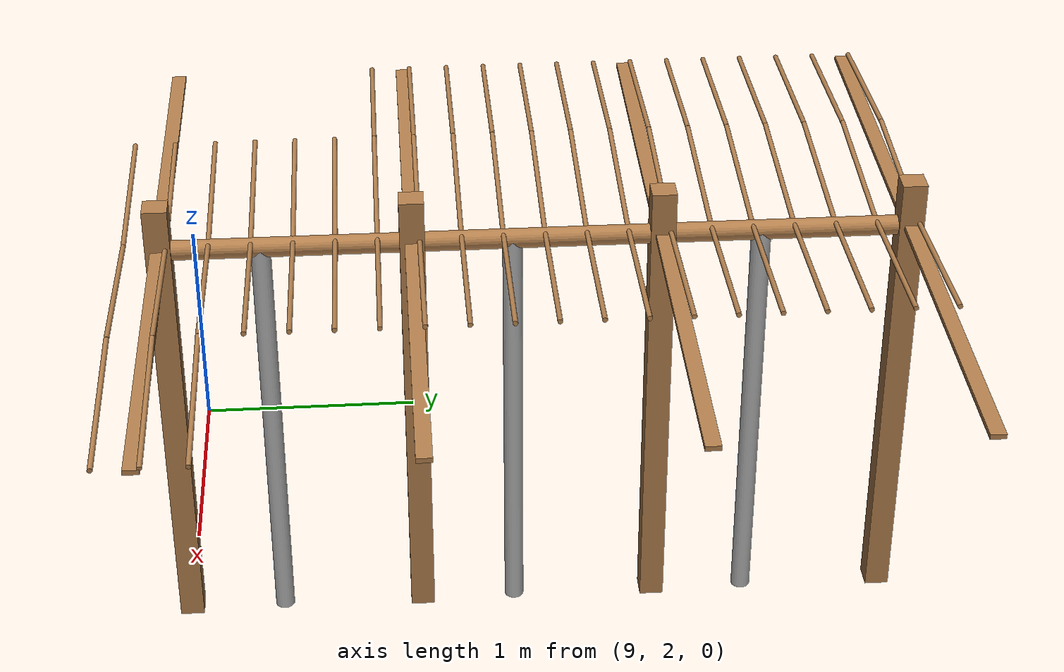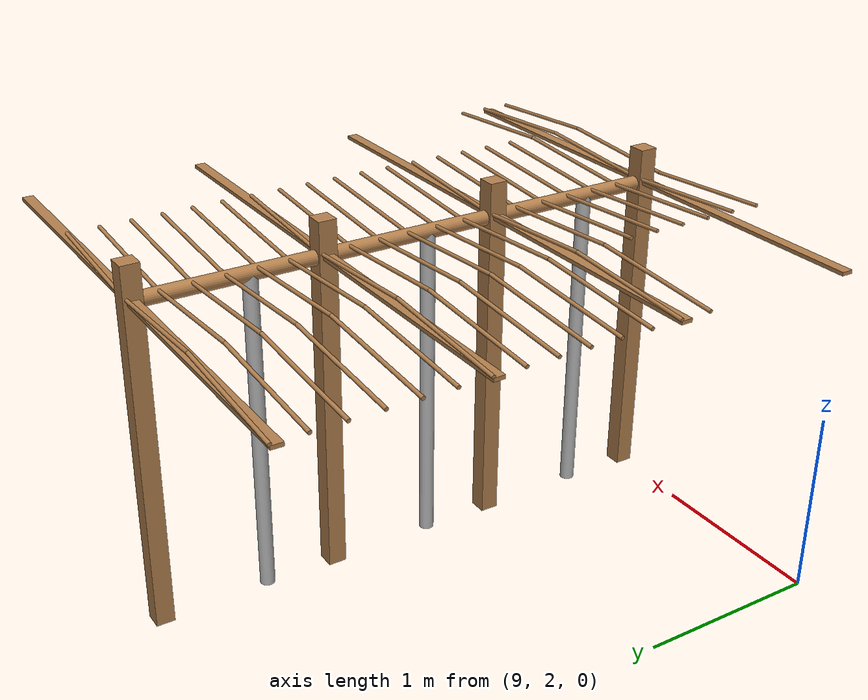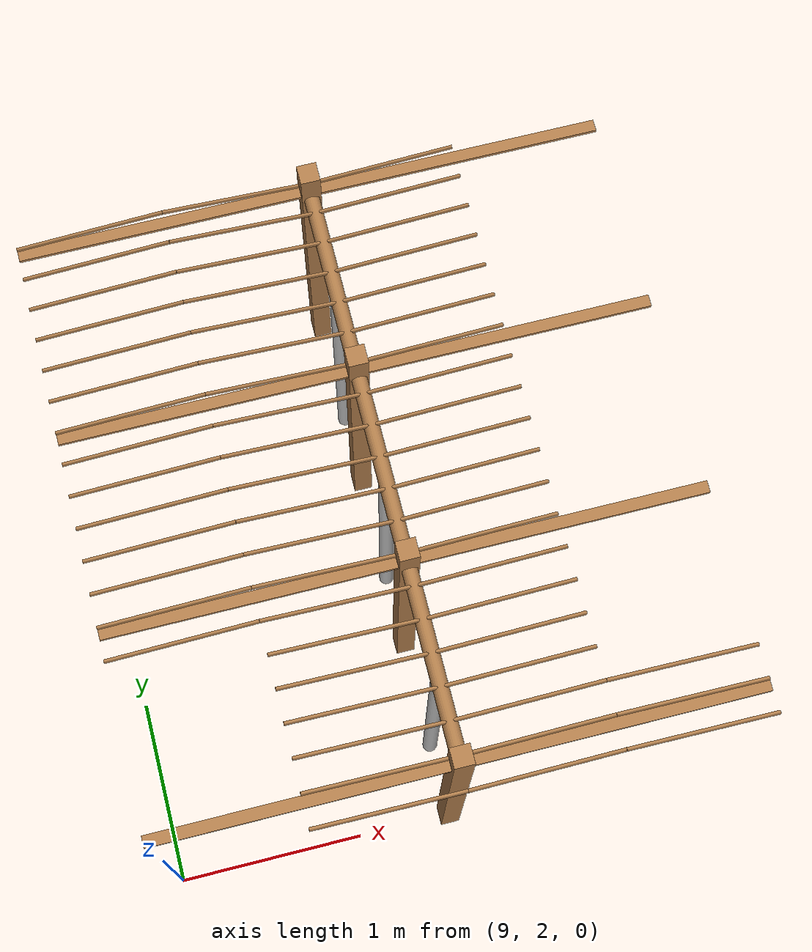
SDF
<sdf version="1.4">
 <model name="pergola">
  <include><name>post_79</name><pose>10.5 2.0 0 0 0 0</pose><uri>model://post</uri></include>
  <include><name>post_80</name><pose>10.5 3.0 0 0 0 0</pose><uri>model://post</uri></include>
  <include><name>post_81</name><pose>10.5 4.0 0 0 0 0</pose><uri>model://post</uri></include>
  <include><name>post_82</name><pose>10.5 5.0 0 0 0 0</pose><uri>model://post</uri></include>
  <link name="beam_68">
   <pose>9.75 2.0 1.81 0 0 0</pose>
   <collision name="collision"><geometry><box><size>1.5 0.06 0.02</size></box></geometry></collision>
   <visual name="visual">
    <geometry><box><size>1.5 0.06 0.02</size></box></geometry>
    <material><script><name>Gazebo/Wood</name></script></material>
   </visual>
   <inertial>
    <mass>5</mass>
    <inertia>
     <ixx>0.0016666666666666668</ixx>
     <ixy>0.0</ixy>
     <ixz>0.0</ixz>
     <iyy>0.9390000000000001</iyy>
     <iyz>0.0</iyz>
     <izz>0.9376666666666665</izz>
    </inertia>
   </inertial>
  </link>
  <link name="beam_69">
   <pose>9.75 3.0 1.81 0 0 0</pose>
   <collision name="collision"><geometry><box><size>1.5 0.06 0.02</size></box></geometry></collision>
   <visual name="visual">
    <geometry><box><size>1.5 0.06 0.02</size></box></geometry>
    <material><script><name>Gazebo/Wood</name></script></material>
   </visual>
   <inertial>
    <mass>5</mass>
    <inertia>
     <ixx>0.0016666666666666668</ixx>
     <ixy>0.0</ixy>
     <ixz>0.0</ixz>
     <iyy>0.9390000000000001</iyy>
     <iyz>0.0</iyz>
     <izz>0.9376666666666665</izz>
    </inertia>
   </inertial>
  </link>
  <link name="beam_70">
   <pose>9.75 4.0 1.81 0 0 0</pose>
   <collision name="collision"><geometry><box><size>1.5 0.06 0.02</size></box></geometry></collision>
   <visual name="visual">
    <geometry><box><size>1.5 0.06 0.02</size></box></geometry>
    <material><script><name>Gazebo/Wood</name></script></material>
   </visual>
   <inertial>
    <mass>5</mass>
    <inertia>
     <ixx>0.0016666666666666668</ixx>
     <ixy>0.0</ixy>
     <ixz>0.0</ixz>
     <iyy>0.9390000000000001</iyy>
     <iyz>0.0</iyz>
     <izz>0.9376666666666665</izz>
    </inertia>
   </inertial>
  </link>
  <link name="beam_71">
   <pose>9.75 5.0 1.81 0 0 0</pose>
   <collision name="collision"><geometry><box><size>1.5 0.06 0.02</size></box></geometry></collision>
   <visual name="visual">
    <geometry><box><size>1.5 0.06 0.02</size></box></geometry>
    <material><script><name>Gazebo/Wood</name></script></material>
   </visual>
   <inertial>
    <mass>5</mass>
    <inertia>
     <ixx>0.0016666666666666668</ixx>
     <ixy>0.0</ixy>
     <ixz>0.0</ixz>
     <iyy>0.9390000000000001</iyy>
     <iyz>0.0</iyz>
     <izz>0.9376666666666665</izz>
    </inertia>
   </inertial>
  </link>
  <link name="beam_79">
   <pose>11.25 2.0 1.81 0 0 0</pose>
   <collision name="collision"><geometry><box><size>1.5 0.06 0.02</size></box></geometry></collision>
   <visual name="visual">
    <geometry><box><size>1.5 0.06 0.02</size></box></geometry>
    <material><script><name>Gazebo/Wood</name></script></material>
   </visual>
   <inertial>
    <mass>5</mass>
    <inertia>
     <ixx>0.0016666666666666668</ixx>
     <ixy>0.0</ixy>
     <ixz>0.0</ixz>
     <iyy>0.9390000000000001</iyy>
     <iyz>0.0</iyz>
     <izz>0.9376666666666665</izz>
    </inertia>
   </inertial>
  </link>
  <link name="beam_80">
   <pose>11.25 3.0 1.81 0 0 0</pose>
   <collision name="collision"><geometry><box><size>1.5 0.06 0.02</size></box></geometry></collision>
   <visual name="visual">
    <geometry><box><size>1.5 0.06 0.02</size></box></geometry>
    <material><script><name>Gazebo/Wood</name></script></material>
   </visual>
   <inertial>
    <mass>5</mass>
    <inertia>
     <ixx>0.0016666666666666668</ixx>
     <ixy>0.0</ixy>
     <ixz>0.0</ixz>
     <iyy>0.9390000000000001</iyy>
     <iyz>0.0</iyz>
     <izz>0.9376666666666665</izz>
    </inertia>
   </inertial>
  </link>
  <link name="beam_81">
   <pose>11.25 4.0 1.81 0 0 0</pose>
   <collision name="collision"><geometry><box><size>1.5 0.06 0.02</size></box></geometry></collision>
   <visual name="visual">
    <geometry><box><size>1.5 0.06 0.02</size></box></geometry>
    <material><script><name>Gazebo/Wood</name></script></material>
   </visual>
   <inertial>
    <mass>5</mass>
    <inertia>
     <ixx>0.0016666666666666668</ixx>
     <ixy>0.0</ixy>
     <ixz>0.0</ixz>
     <iyy>0.9390000000000001</iyy>
     <iyz>0.0</iyz>
     <izz>0.9376666666666665</izz>
    </inertia>
   </inertial>
  </link>
  <link name="beam_82">
   <pose>11.25 5.0 1.81 0 0 0</pose>
   <collision name="collision"><geometry><box><size>1.5 0.06 0.02</size></box></geometry></collision>
   <visual name="visual">
    <geometry><box><size>1.5 0.06 0.02</size></box></geometry>
    <material><script><name>Gazebo/Wood</name></script></material>
   </visual>
   <inertial>
    <mass>5</mass>
    <inertia>
     <ixx>0.0016666666666666668</ixx>
     <ixy>0.0</ixy>
     <ixz>0.0</ixz>
     <iyy>0.9390000000000001</iyy>
     <iyz>0.0</iyz>
     <izz>0.9376666666666665</izz>
    </inertia>
   </inertial>
  </link>
  <include><name>tree_72</name><pose>10.5 2.4 0 0 0 0</pose><uri>model://tree_trunk</uri></include>
  <include><name>tree_73</name><pose>10.5 3.4 0 0 0 0</pose><uri>model://tree_trunk</uri></include>
  <include><name>tree_74</name><pose>10.5 4.4 0 0 0 0</pose><uri>model://tree_trunk</uri></include>
  <link name="baseBranch_72">
   <pose>10.5 2.5 1.8 1.5707963267948966 0 0</pose>
   <collision name="collision">
    <geometry><cylinder><radius>0.04</radius><length>0.94</length></cylinder></geometry>
   </collision>
   <visual name="visual">
    <geometry><cylinder><radius>0.04</radius><length>0.94</length></cylinder></geometry>
    <material><script><name>Gazebo/WoodFloor</name></script></material>
   </visual>
   <inertial>
    <mass>10</mass>
    <inertia>
     <ixx>0.7403333333333334</ixx>
     <ixy>0.0</ixy>
     <ixz>0.0</ixz>
     <iyy>0.7403333333333334</iyy>
     <iyz>0.0</iyz>
     <izz>0.008</izz>
    </inertia>
   </inertial>
  </link>
  <link name="baseBranch_73">
   <pose>10.5 3.5 1.8 1.5707963267948966 0 0</pose>
   <collision name="collision">
    <geometry><cylinder><radius>0.04</radius><length>0.94</length></cylinder></geometry>
   </collision>
   <visual name="visual">
    <geometry><cylinder><radius>0.04</radius><length>0.94</length></cylinder></geometry>
    <material><script><name>Gazebo/WoodFloor</name></script></material>
   </visual>
   <inertial>
    <mass>10</mass>
    <inertia>
     <ixx>0.7403333333333334</ixx>
     <ixy>0.0</ixy>
     <ixz>0.0</ixz>
     <iyy>0.7403333333333334</iyy>
     <iyz>0.0</iyz>
     <izz>0.008</izz>
    </inertia>
   </inertial>
  </link>
  <link name="baseBranch_74">
   <pose>10.5 4.5 1.8 1.5707963267948966 0 0</pose>
   <collision name="collision">
    <geometry><cylinder><radius>0.04</radius><length>0.94</length></cylinder></geometry>
   </collision>
   <visual name="visual">
    <geometry><cylinder><radius>0.04</radius><length>0.94</length></cylinder></geometry>
    <material><script><name>Gazebo/WoodFloor</name></script></material>
   </visual>
   <inertial>
    <mass>10</mass>
    <inertia>
     <ixx>0.7403333333333334</ixx>
     <ixy>0.0</ixy>
     <ixz>0.0</ixz>
     <iyy>0.7403333333333334</iyy>
     <iyz>0.0</iyz>
     <izz>0.008</izz>
    </inertia>
   </inertial>
  </link>
  <link name="vine_743">
   <pose>10.125 1.8633333333333333 1.85 0 -1.5042281630190728 0</pose>
   <collision name="collision">
    <geometry><cylinder><radius>0.01</radius><length>0.7516648189186453</length></cylinder></geometry>
   </collision>
   <visual name="visual">
    <geometry><cylinder><radius>0.01</radius><length>0.7516648189186453</length></cylinder></geometry>
    <material><script><name>Gazebo/WoodFloor</name></script></material>
   </visual>
   <inertial>
    <mass>5</mass>
    <inertia>
     <ixx>0.23554166666666657</ixx>
     <ixy>0.0</ixy>
     <ixz>0.0</ixz>
     <iyy>0.23554166666666657</iyy>
     <iyz>0.0</iyz>
     <izz>0.00025</izz>
    </inertia>
   </inertial>
  </link>
  <link name="vine_745">
   <pose>10.125 2.03 1.85 0 -1.5042281630190728 0</pose>
   <collision name="collision">
    <geometry><cylinder><radius>0.01</radius><length>0.7516648189186453</length></cylinder></geometry>
   </collision>
   <visual name="visual">
    <geometry><cylinder><radius>0.01</radius><length>0.7516648189186453</length></cylinder></geometry>
    <material><script><name>Gazebo/WoodFloor</name></script></material>
   </visual>
   <inertial>
    <mass>5</mass>
    <inertia>
     <ixx>0.23554166666666657</ixx>
     <ixy>0.0</ixy>
     <ixz>0.0</ixz>
     <iyy>0.23554166666666657</iyy>
     <iyz>0.0</iyz>
     <izz>0.00025</izz>
    </inertia>
   </inertial>
  </link>
  <link name="vine_747">
   <pose>10.125 2.1966666666666663 1.85 0 -1.5042281630190728 0</pose>
   <collision name="collision">
    <geometry><cylinder><radius>0.01</radius><length>0.7516648189186453</length></cylinder></geometry>
   </collision>
   <visual name="visual">
    <geometry><cylinder><radius>0.01</radius><length>0.7516648189186453</length></cylinder></geometry>
    <material><script><name>Gazebo/WoodFloor</name></script></material>
   </visual>
   <inertial>
    <mass>5</mass>
    <inertia>
     <ixx>0.23554166666666657</ixx>
     <ixy>0.0</ixy>
     <ixz>0.0</ixz>
     <iyy>0.23554166666666657</iyy>
     <iyz>0.0</iyz>
     <izz>0.00025</izz>
    </inertia>
   </inertial>
  </link>
  <link name="vine_749">
   <pose>10.125 2.363333333333333 1.85 0 -1.5042281630190728 0</pose>
   <collision name="collision">
    <geometry><cylinder><radius>0.01</radius><length>0.7516648189186453</length></cylinder></geometry>
   </collision>
   <visual name="visual">
    <geometry><cylinder><radius>0.01</radius><length>0.7516648189186453</length></cylinder></geometry>
    <material><script><name>Gazebo/WoodFloor</name></script></material>
   </visual>
   <inertial>
    <mass>5</mass>
    <inertia>
     <ixx>0.23554166666666657</ixx>
     <ixy>0.0</ixy>
     <ixz>0.0</ixz>
     <iyy>0.23554166666666657</iyy>
     <iyz>0.0</iyz>
     <izz>0.00025</izz>
    </inertia>
   </inertial>
  </link>
  <link name="vine_751">
   <pose>10.125 2.53 1.85 0 -1.5042281630190728 0</pose>
   <collision name="collision">
    <geometry><cylinder><radius>0.01</radius><length>0.7516648189186453</length></cylinder></geometry>
   </collision>
   <visual name="visual">
    <geometry><cylinder><radius>0.01</radius><length>0.7516648189186453</length></cylinder></geometry>
    <material><script><name>Gazebo/WoodFloor</name></script></material>
   </visual>
   <inertial>
    <mass>5</mass>
    <inertia>
     <ixx>0.23554166666666657</ixx>
     <ixy>0.0</ixy>
     <ixz>0.0</ixz>
     <iyy>0.23554166666666657</iyy>
     <iyz>0.0</iyz>
     <izz>0.00025</izz>
    </inertia>
   </inertial>
  </link>
  <link name="vine_753">
   <pose>10.125 2.6966666666666663 1.85 0 -1.5042281630190728 0</pose>
   <collision name="collision">
    <geometry><cylinder><radius>0.01</radius><length>0.7516648189186453</length></cylinder></geometry>
   </collision>
   <visual name="visual">
    <geometry><cylinder><radius>0.01</radius><length>0.7516648189186453</length></cylinder></geometry>
    <material><script><name>Gazebo/WoodFloor</name></script></material>
   </visual>
   <inertial>
    <mass>5</mass>
    <inertia>
     <ixx>0.23554166666666657</ixx>
     <ixy>0.0</ixy>
     <ixz>0.0</ixz>
     <iyy>0.23554166666666657</iyy>
     <iyz>0.0</iyz>
     <izz>0.00025</izz>
    </inertia>
   </inertial>
  </link>
  <link name="vine_754">
   <pose>9.375 2.863333333333333 1.85 0 1.5042281630190728 0</pose>
   <collision name="collision">
    <geometry><cylinder><radius>0.01</radius><length>0.7516648189186453</length></cylinder></geometry>
   </collision>
   <visual name="visual">
    <geometry><cylinder><radius>0.01</radius><length>0.7516648189186453</length></cylinder></geometry>
    <material><script><name>Gazebo/WoodFloor</name></script></material>
   </visual>
   <inertial>
    <mass>5</mass>
    <inertia>
     <ixx>0.23554166666666657</ixx>
     <ixy>0.0</ixy>
     <ixz>0.0</ixz>
     <iyy>0.23554166666666657</iyy>
     <iyz>0.0</iyz>
     <izz>0.00025</izz>
    </inertia>
   </inertial>
  </link>
  <link name="vine_755">
   <pose>10.125 2.863333333333333 1.85 0 -1.5042281630190728 0</pose>
   <collision name="collision">
    <geometry><cylinder><radius>0.01</radius><length>0.7516648189186453</length></cylinder></geometry>
   </collision>
   <visual name="visual">
    <geometry><cylinder><radius>0.01</radius><length>0.7516648189186453</length></cylinder></geometry>
    <material><script><name>Gazebo/WoodFloor</name></script></material>
   </visual>
   <inertial>
    <mass>5</mass>
    <inertia>
     <ixx>0.23554166666666657</ixx>
     <ixy>0.0</ixy>
     <ixz>0.0</ixz>
     <iyy>0.23554166666666657</iyy>
     <iyz>0.0</iyz>
     <izz>0.00025</izz>
    </inertia>
   </inertial>
  </link>
  <link name="vine_756">
   <pose>9.375 3.03 1.85 0 1.5042281630190728 0</pose>
   <collision name="collision">
    <geometry><cylinder><radius>0.01</radius><length>0.7516648189186453</length></cylinder></geometry>
   </collision>
   <visual name="visual">
    <geometry><cylinder><radius>0.01</radius><length>0.7516648189186453</length></cylinder></geometry>
    <material><script><name>Gazebo/WoodFloor</name></script></material>
   </visual>
   <inertial>
    <mass>5</mass>
    <inertia>
     <ixx>0.23554166666666657</ixx>
     <ixy>0.0</ixy>
     <ixz>0.0</ixz>
     <iyy>0.23554166666666657</iyy>
     <iyz>0.0</iyz>
     <izz>0.00025</izz>
    </inertia>
   </inertial>
  </link>
  <link name="vine_757">
   <pose>10.125 3.03 1.85 0 -1.5042281630190728 0</pose>
   <collision name="collision">
    <geometry><cylinder><radius>0.01</radius><length>0.7516648189186453</length></cylinder></geometry>
   </collision>
   <visual name="visual">
    <geometry><cylinder><radius>0.01</radius><length>0.7516648189186453</length></cylinder></geometry>
    <material><script><name>Gazebo/WoodFloor</name></script></material>
   </visual>
   <inertial>
    <mass>5</mass>
    <inertia>
     <ixx>0.23554166666666657</ixx>
     <ixy>0.0</ixy>
     <ixz>0.0</ixz>
     <iyy>0.23554166666666657</iyy>
     <iyz>0.0</iyz>
     <izz>0.00025</izz>
    </inertia>
   </inertial>
  </link>
  <link name="vine_758">
   <pose>9.375 3.1966666666666663 1.85 0 1.5042281630190728 0</pose>
   <collision name="collision">
    <geometry><cylinder><radius>0.01</radius><length>0.7516648189186453</length></cylinder></geometry>
   </collision>
   <visual name="visual">
    <geometry><cylinder><radius>0.01</radius><length>0.7516648189186453</length></cylinder></geometry>
    <material><script><name>Gazebo/WoodFloor</name></script></material>
   </visual>
   <inertial>
    <mass>5</mass>
    <inertia>
     <ixx>0.23554166666666657</ixx>
     <ixy>0.0</ixy>
     <ixz>0.0</ixz>
     <iyy>0.23554166666666657</iyy>
     <iyz>0.0</iyz>
     <izz>0.00025</izz>
    </inertia>
   </inertial>
  </link>
  <link name="vine_759">
   <pose>10.125 3.1966666666666663 1.85 0 -1.5042281630190728 0</pose>
   <collision name="collision">
    <geometry><cylinder><radius>0.01</radius><length>0.7516648189186453</length></cylinder></geometry>
   </collision>
   <visual name="visual">
    <geometry><cylinder><radius>0.01</radius><length>0.7516648189186453</length></cylinder></geometry>
    <material><script><name>Gazebo/WoodFloor</name></script></material>
   </visual>
   <inertial>
    <mass>5</mass>
    <inertia>
     <ixx>0.23554166666666657</ixx>
     <ixy>0.0</ixy>
     <ixz>0.0</ixz>
     <iyy>0.23554166666666657</iyy>
     <iyz>0.0</iyz>
     <izz>0.00025</izz>
    </inertia>
   </inertial>
  </link>
  <link name="vine_760">
   <pose>9.375 3.363333333333333 1.85 0 1.5042281630190728 0</pose>
   <collision name="collision">
    <geometry><cylinder><radius>0.01</radius><length>0.7516648189186453</length></cylinder></geometry>
   </collision>
   <visual name="visual">
    <geometry><cylinder><radius>0.01</radius><length>0.7516648189186453</length></cylinder></geometry>
    <material><script><name>Gazebo/WoodFloor</name></script></material>
   </visual>
   <inertial>
    <mass>5</mass>
    <inertia>
     <ixx>0.23554166666666657</ixx>
     <ixy>0.0</ixy>
     <ixz>0.0</ixz>
     <iyy>0.23554166666666657</iyy>
     <iyz>0.0</iyz>
     <izz>0.00025</izz>
    </inertia>
   </inertial>
  </link>
  <link name="vine_761">
   <pose>10.125 3.363333333333333 1.85 0 -1.5042281630190728 0</pose>
   <collision name="collision">
    <geometry><cylinder><radius>0.01</radius><length>0.7516648189186453</length></cylinder></geometry>
   </collision>
   <visual name="visual">
    <geometry><cylinder><radius>0.01</radius><length>0.7516648189186453</length></cylinder></geometry>
    <material><script><name>Gazebo/WoodFloor</name></script></material>
   </visual>
   <inertial>
    <mass>5</mass>
    <inertia>
     <ixx>0.23554166666666657</ixx>
     <ixy>0.0</ixy>
     <ixz>0.0</ixz>
     <iyy>0.23554166666666657</iyy>
     <iyz>0.0</iyz>
     <izz>0.00025</izz>
    </inertia>
   </inertial>
  </link>
  <link name="vine_762">
   <pose>9.375 3.53 1.85 0 1.5042281630190728 0</pose>
   <collision name="collision">
    <geometry><cylinder><radius>0.01</radius><length>0.7516648189186453</length></cylinder></geometry>
   </collision>
   <visual name="visual">
    <geometry><cylinder><radius>0.01</radius><length>0.7516648189186453</length></cylinder></geometry>
    <material><script><name>Gazebo/WoodFloor</name></script></material>
   </visual>
   <inertial>
    <mass>5</mass>
    <inertia>
     <ixx>0.23554166666666657</ixx>
     <ixy>0.0</ixy>
     <ixz>0.0</ixz>
     <iyy>0.23554166666666657</iyy>
     <iyz>0.0</iyz>
     <izz>0.00025</izz>
    </inertia>
   </inertial>
  </link>
  <link name="vine_763">
   <pose>10.125 3.53 1.85 0 -1.5042281630190728 0</pose>
   <collision name="collision">
    <geometry><cylinder><radius>0.01</radius><length>0.7516648189186453</length></cylinder></geometry>
   </collision>
   <visual name="visual">
    <geometry><cylinder><radius>0.01</radius><length>0.7516648189186453</length></cylinder></geometry>
    <material><script><name>Gazebo/WoodFloor</name></script></material>
   </visual>
   <inertial>
    <mass>5</mass>
    <inertia>
     <ixx>0.23554166666666657</ixx>
     <ixy>0.0</ixy>
     <ixz>0.0</ixz>
     <iyy>0.23554166666666657</iyy>
     <iyz>0.0</iyz>
     <izz>0.00025</izz>
    </inertia>
   </inertial>
  </link>
  <link name="vine_764">
   <pose>9.375 3.6966666666666663 1.85 0 1.5042281630190728 0</pose>
   <collision name="collision">
    <geometry><cylinder><radius>0.01</radius><length>0.7516648189186453</length></cylinder></geometry>
   </collision>
   <visual name="visual">
    <geometry><cylinder><radius>0.01</radius><length>0.7516648189186453</length></cylinder></geometry>
    <material><script><name>Gazebo/WoodFloor</name></script></material>
   </visual>
   <inertial>
    <mass>5</mass>
    <inertia>
     <ixx>0.23554166666666657</ixx>
     <ixy>0.0</ixy>
     <ixz>0.0</ixz>
     <iyy>0.23554166666666657</iyy>
     <iyz>0.0</iyz>
     <izz>0.00025</izz>
    </inertia>
   </inertial>
  </link>
  <link name="vine_765">
   <pose>10.125 3.6966666666666663 1.85 0 -1.5042281630190728 0</pose>
   <collision name="collision">
    <geometry><cylinder><radius>0.01</radius><length>0.7516648189186453</length></cylinder></geometry>
   </collision>
   <visual name="visual">
    <geometry><cylinder><radius>0.01</radius><length>0.7516648189186453</length></cylinder></geometry>
    <material><script><name>Gazebo/WoodFloor</name></script></material>
   </visual>
   <inertial>
    <mass>5</mass>
    <inertia>
     <ixx>0.23554166666666657</ixx>
     <ixy>0.0</ixy>
     <ixz>0.0</ixz>
     <iyy>0.23554166666666657</iyy>
     <iyz>0.0</iyz>
     <izz>0.00025</izz>
    </inertia>
   </inertial>
  </link>
  <link name="vine_766">
   <pose>9.375 3.863333333333333 1.85 0 1.5042281630190728 0</pose>
   <collision name="collision">
    <geometry><cylinder><radius>0.01</radius><length>0.7516648189186453</length></cylinder></geometry>
   </collision>
   <visual name="visual">
    <geometry><cylinder><radius>0.01</radius><length>0.7516648189186453</length></cylinder></geometry>
    <material><script><name>Gazebo/WoodFloor</name></script></material>
   </visual>
   <inertial>
    <mass>5</mass>
    <inertia>
     <ixx>0.23554166666666657</ixx>
     <ixy>0.0</ixy>
     <ixz>0.0</ixz>
     <iyy>0.23554166666666657</iyy>
     <iyz>0.0</iyz>
     <izz>0.00025</izz>
    </inertia>
   </inertial>
  </link>
  <link name="vine_767">
   <pose>10.125 3.863333333333333 1.85 0 -1.5042281630190728 0</pose>
   <collision name="collision">
    <geometry><cylinder><radius>0.01</radius><length>0.7516648189186453</length></cylinder></geometry>
   </collision>
   <visual name="visual">
    <geometry><cylinder><radius>0.01</radius><length>0.7516648189186453</length></cylinder></geometry>
    <material><script><name>Gazebo/WoodFloor</name></script></material>
   </visual>
   <inertial>
    <mass>5</mass>
    <inertia>
     <ixx>0.23554166666666657</ixx>
     <ixy>0.0</ixy>
     <ixz>0.0</ixz>
     <iyy>0.23554166666666657</iyy>
     <iyz>0.0</iyz>
     <izz>0.00025</izz>
    </inertia>
   </inertial>
  </link>
  <link name="vine_768">
   <pose>9.375 4.03 1.85 0 1.5042281630190728 0</pose>
   <collision name="collision">
    <geometry><cylinder><radius>0.01</radius><length>0.7516648189186453</length></cylinder></geometry>
   </collision>
   <visual name="visual">
    <geometry><cylinder><radius>0.01</radius><length>0.7516648189186453</length></cylinder></geometry>
    <material><script><name>Gazebo/WoodFloor</name></script></material>
   </visual>
   <inertial>
    <mass>5</mass>
    <inertia>
     <ixx>0.23554166666666657</ixx>
     <ixy>0.0</ixy>
     <ixz>0.0</ixz>
     <iyy>0.23554166666666657</iyy>
     <iyz>0.0</iyz>
     <izz>0.00025</izz>
    </inertia>
   </inertial>
  </link>
  <link name="vine_769">
   <pose>10.125 4.03 1.85 0 -1.5042281630190728 0</pose>
   <collision name="collision">
    <geometry><cylinder><radius>0.01</radius><length>0.7516648189186453</length></cylinder></geometry>
   </collision>
   <visual name="visual">
    <geometry><cylinder><radius>0.01</radius><length>0.7516648189186453</length></cylinder></geometry>
    <material><script><name>Gazebo/WoodFloor</name></script></material>
   </visual>
   <inertial>
    <mass>5</mass>
    <inertia>
     <ixx>0.23554166666666657</ixx>
     <ixy>0.0</ixy>
     <ixz>0.0</ixz>
     <iyy>0.23554166666666657</iyy>
     <iyz>0.0</iyz>
     <izz>0.00025</izz>
    </inertia>
   </inertial>
  </link>
  <link name="vine_770">
   <pose>9.375 4.196666666666666 1.85 0 1.5042281630190728 0</pose>
   <collision name="collision">
    <geometry><cylinder><radius>0.01</radius><length>0.7516648189186453</length></cylinder></geometry>
   </collision>
   <visual name="visual">
    <geometry><cylinder><radius>0.01</radius><length>0.7516648189186453</length></cylinder></geometry>
    <material><script><name>Gazebo/WoodFloor</name></script></material>
   </visual>
   <inertial>
    <mass>5</mass>
    <inertia>
     <ixx>0.23554166666666657</ixx>
     <ixy>0.0</ixy>
     <ixz>0.0</ixz>
     <iyy>0.23554166666666657</iyy>
     <iyz>0.0</iyz>
     <izz>0.00025</izz>
    </inertia>
   </inertial>
  </link>
  <link name="vine_771">
   <pose>10.125 4.196666666666666 1.85 0 -1.5042281630190728 0</pose>
   <collision name="collision">
    <geometry><cylinder><radius>0.01</radius><length>0.7516648189186453</length></cylinder></geometry>
   </collision>
   <visual name="visual">
    <geometry><cylinder><radius>0.01</radius><length>0.7516648189186453</length></cylinder></geometry>
    <material><script><name>Gazebo/WoodFloor</name></script></material>
   </visual>
   <inertial>
    <mass>5</mass>
    <inertia>
     <ixx>0.23554166666666657</ixx>
     <ixy>0.0</ixy>
     <ixz>0.0</ixz>
     <iyy>0.23554166666666657</iyy>
     <iyz>0.0</iyz>
     <izz>0.00025</izz>
    </inertia>
   </inertial>
  </link>
  <link name="vine_772">
   <pose>9.375 4.363333333333333 1.85 0 1.5042281630190728 0</pose>
   <collision name="collision">
    <geometry><cylinder><radius>0.01</radius><length>0.7516648189186453</length></cylinder></geometry>
   </collision>
   <visual name="visual">
    <geometry><cylinder><radius>0.01</radius><length>0.7516648189186453</length></cylinder></geometry>
    <material><script><name>Gazebo/WoodFloor</name></script></material>
   </visual>
   <inertial>
    <mass>5</mass>
    <inertia>
     <ixx>0.23554166666666657</ixx>
     <ixy>0.0</ixy>
     <ixz>0.0</ixz>
     <iyy>0.23554166666666657</iyy>
     <iyz>0.0</iyz>
     <izz>0.00025</izz>
    </inertia>
   </inertial>
  </link>
  <link name="vine_773">
   <pose>10.125 4.363333333333333 1.85 0 -1.5042281630190728 0</pose>
   <collision name="collision">
    <geometry><cylinder><radius>0.01</radius><length>0.7516648189186453</length></cylinder></geometry>
   </collision>
   <visual name="visual">
    <geometry><cylinder><radius>0.01</radius><length>0.7516648189186453</length></cylinder></geometry>
    <material><script><name>Gazebo/WoodFloor</name></script></material>
   </visual>
   <inertial>
    <mass>5</mass>
    <inertia>
     <ixx>0.23554166666666657</ixx>
     <ixy>0.0</ixy>
     <ixz>0.0</ixz>
     <iyy>0.23554166666666657</iyy>
     <iyz>0.0</iyz>
     <izz>0.00025</izz>
    </inertia>
   </inertial>
  </link>
  <link name="vine_774">
   <pose>9.375 4.53 1.85 0 1.5042281630190728 0</pose>
   <collision name="collision">
    <geometry><cylinder><radius>0.01</radius><length>0.7516648189186453</length></cylinder></geometry>
   </collision>
   <visual name="visual">
    <geometry><cylinder><radius>0.01</radius><length>0.7516648189186453</length></cylinder></geometry>
    <material><script><name>Gazebo/WoodFloor</name></script></material>
   </visual>
   <inertial>
    <mass>5</mass>
    <inertia>
     <ixx>0.23554166666666657</ixx>
     <ixy>0.0</ixy>
     <ixz>0.0</ixz>
     <iyy>0.23554166666666657</iyy>
     <iyz>0.0</iyz>
     <izz>0.00025</izz>
    </inertia>
   </inertial>
  </link>
  <link name="vine_775">
   <pose>10.125 4.53 1.85 0 -1.5042281630190728 0</pose>
   <collision name="collision">
    <geometry><cylinder><radius>0.01</radius><length>0.7516648189186453</length></cylinder></geometry>
   </collision>
   <visual name="visual">
    <geometry><cylinder><radius>0.01</radius><length>0.7516648189186453</length></cylinder></geometry>
    <material><script><name>Gazebo/WoodFloor</name></script></material>
   </visual>
   <inertial>
    <mass>5</mass>
    <inertia>
     <ixx>0.23554166666666657</ixx>
     <ixy>0.0</ixy>
     <ixz>0.0</ixz>
     <iyy>0.23554166666666657</iyy>
     <iyz>0.0</iyz>
     <izz>0.00025</izz>
    </inertia>
   </inertial>
  </link>
  <link name="vine_776">
   <pose>9.375 4.696666666666666 1.85 0 1.5042281630190728 0</pose>
   <collision name="collision">
    <geometry><cylinder><radius>0.01</radius><length>0.7516648189186453</length></cylinder></geometry>
   </collision>
   <visual name="visual">
    <geometry><cylinder><radius>0.01</radius><length>0.7516648189186453</length></cylinder></geometry>
    <material><script><name>Gazebo/WoodFloor</name></script></material>
   </visual>
   <inertial>
    <mass>5</mass>
    <inertia>
     <ixx>0.23554166666666657</ixx>
     <ixy>0.0</ixy>
     <ixz>0.0</ixz>
     <iyy>0.23554166666666657</iyy>
     <iyz>0.0</iyz>
     <izz>0.00025</izz>
    </inertia>
   </inertial>
  </link>
  <link name="vine_777">
   <pose>10.125 4.696666666666666 1.85 0 -1.5042281630190728 0</pose>
   <collision name="collision">
    <geometry><cylinder><radius>0.01</radius><length>0.7516648189186453</length></cylinder></geometry>
   </collision>
   <visual name="visual">
    <geometry><cylinder><radius>0.01</radius><length>0.7516648189186453</length></cylinder></geometry>
    <material><script><name>Gazebo/WoodFloor</name></script></material>
   </visual>
   <inertial>
    <mass>5</mass>
    <inertia>
     <ixx>0.23554166666666657</ixx>
     <ixy>0.0</ixy>
     <ixz>0.0</ixz>
     <iyy>0.23554166666666657</iyy>
     <iyz>0.0</iyz>
     <izz>0.00025</izz>
    </inertia>
   </inertial>
  </link>
  <link name="vine_778">
   <pose>9.375 4.863333333333333 1.85 0 1.5042281630190728 0</pose>
   <collision name="collision">
    <geometry><cylinder><radius>0.01</radius><length>0.7516648189186453</length></cylinder></geometry>
   </collision>
   <visual name="visual">
    <geometry><cylinder><radius>0.01</radius><length>0.7516648189186453</length></cylinder></geometry>
    <material><script><name>Gazebo/WoodFloor</name></script></material>
   </visual>
   <inertial>
    <mass>5</mass>
    <inertia>
     <ixx>0.23554166666666657</ixx>
     <ixy>0.0</ixy>
     <ixz>0.0</ixz>
     <iyy>0.23554166666666657</iyy>
     <iyz>0.0</iyz>
     <izz>0.00025</izz>
    </inertia>
   </inertial>
  </link>
  <link name="vine_779">
   <pose>10.125 4.863333333333333 1.85 0 -1.5042281630190728 0</pose>
   <collision name="collision">
    <geometry><cylinder><radius>0.01</radius><length>0.7516648189186453</length></cylinder></geometry>
   </collision>
   <visual name="visual">
    <geometry><cylinder><radius>0.01</radius><length>0.7516648189186453</length></cylinder></geometry>
    <material><script><name>Gazebo/WoodFloor</name></script></material>
   </visual>
   <inertial>
    <mass>5</mass>
    <inertia>
     <ixx>0.23554166666666657</ixx>
     <ixy>0.0</ixy>
     <ixz>0.0</ixz>
     <iyy>0.23554166666666657</iyy>
     <iyz>0.0</iyz>
     <izz>0.00025</izz>
    </inertia>
   </inertial>
  </link>
  <link name="vine_780">
   <pose>9.375 5.03 1.85 0 1.5042281630190728 0</pose>
   <collision name="collision">
    <geometry><cylinder><radius>0.01</radius><length>0.7516648189186453</length></cylinder></geometry>
   </collision>
   <visual name="visual">
    <geometry><cylinder><radius>0.01</radius><length>0.7516648189186453</length></cylinder></geometry>
    <material><script><name>Gazebo/WoodFloor</name></script></material>
   </visual>
   <inertial>
    <mass>5</mass>
    <inertia>
     <ixx>0.23554166666666657</ixx>
     <ixy>0.0</ixy>
     <ixz>0.0</ixz>
     <iyy>0.23554166666666657</iyy>
     <iyz>0.0</iyz>
     <izz>0.00025</izz>
    </inertia>
   </inertial>
  </link>
  <link name="vine_781">
   <pose>10.125 5.03 1.85 0 -1.5042281630190728 0</pose>
   <collision name="collision">
    <geometry><cylinder><radius>0.01</radius><length>0.7516648189186453</length></cylinder></geometry>
   </collision>
   <visual name="visual">
    <geometry><cylinder><radius>0.01</radius><length>0.7516648189186453</length></cylinder></geometry>
    <material><script><name>Gazebo/WoodFloor</name></script></material>
   </visual>
   <inertial>
    <mass>5</mass>
    <inertia>
     <ixx>0.23554166666666657</ixx>
     <ixy>0.0</ixy>
     <ixz>0.0</ixz>
     <iyy>0.23554166666666657</iyy>
     <iyz>0.0</iyz>
     <izz>0.00025</izz>
    </inertia>
   </inertial>
  </link>
  <link name="vine_862">
   <pose>10.875 1.8633333333333333 1.85 0 1.5042281630190728 0</pose>
   <collision name="collision">
    <geometry><cylinder><radius>0.01</radius><length>0.7516648189186453</length></cylinder></geometry>
   </collision>
   <visual name="visual">
    <geometry><cylinder><radius>0.01</radius><length>0.7516648189186453</length></cylinder></geometry>
    <material><script><name>Gazebo/WoodFloor</name></script></material>
   </visual>
   <inertial>
    <mass>5</mass>
    <inertia>
     <ixx>0.23554166666666657</ixx>
     <ixy>0.0</ixy>
     <ixz>0.0</ixz>
     <iyy>0.23554166666666657</iyy>
     <iyz>0.0</iyz>
     <izz>0.00025</izz>
    </inertia>
   </inertial>
  </link>
  <link name="vine_863">
   <pose>11.625 1.8633333333333333 1.85 0 -1.5042281630190728 0</pose>
   <collision name="collision">
    <geometry><cylinder><radius>0.01</radius><length>0.7516648189186453</length></cylinder></geometry>
   </collision>
   <visual name="visual">
    <geometry><cylinder><radius>0.01</radius><length>0.7516648189186453</length></cylinder></geometry>
    <material><script><name>Gazebo/WoodFloor</name></script></material>
   </visual>
   <inertial>
    <mass>5</mass>
    <inertia>
     <ixx>0.23554166666666657</ixx>
     <ixy>0.0</ixy>
     <ixz>0.0</ixz>
     <iyy>0.23554166666666657</iyy>
     <iyz>0.0</iyz>
     <izz>0.00025</izz>
    </inertia>
   </inertial>
  </link>
  <link name="vine_864">
   <pose>10.875 2.03 1.85 0 1.5042281630190728 0</pose>
   <collision name="collision">
    <geometry><cylinder><radius>0.01</radius><length>0.7516648189186453</length></cylinder></geometry>
   </collision>
   <visual name="visual">
    <geometry><cylinder><radius>0.01</radius><length>0.7516648189186453</length></cylinder></geometry>
    <material><script><name>Gazebo/WoodFloor</name></script></material>
   </visual>
   <inertial>
    <mass>5</mass>
    <inertia>
     <ixx>0.23554166666666657</ixx>
     <ixy>0.0</ixy>
     <ixz>0.0</ixz>
     <iyy>0.23554166666666657</iyy>
     <iyz>0.0</iyz>
     <izz>0.00025</izz>
    </inertia>
   </inertial>
  </link>
  <link name="vine_865">
   <pose>11.625 2.03 1.85 0 -1.5042281630190728 0</pose>
   <collision name="collision">
    <geometry><cylinder><radius>0.01</radius><length>0.7516648189186453</length></cylinder></geometry>
   </collision>
   <visual name="visual">
    <geometry><cylinder><radius>0.01</radius><length>0.7516648189186453</length></cylinder></geometry>
    <material><script><name>Gazebo/WoodFloor</name></script></material>
   </visual>
   <inertial>
    <mass>5</mass>
    <inertia>
     <ixx>0.23554166666666657</ixx>
     <ixy>0.0</ixy>
     <ixz>0.0</ixz>
     <iyy>0.23554166666666657</iyy>
     <iyz>0.0</iyz>
     <izz>0.00025</izz>
    </inertia>
   </inertial>
  </link>
  <link name="vine_866">
   <pose>10.875 2.1966666666666663 1.85 0 1.5042281630190728 0</pose>
   <collision name="collision">
    <geometry><cylinder><radius>0.01</radius><length>0.7516648189186453</length></cylinder></geometry>
   </collision>
   <visual name="visual">
    <geometry><cylinder><radius>0.01</radius><length>0.7516648189186453</length></cylinder></geometry>
    <material><script><name>Gazebo/WoodFloor</name></script></material>
   </visual>
   <inertial>
    <mass>5</mass>
    <inertia>
     <ixx>0.23554166666666657</ixx>
     <ixy>0.0</ixy>
     <ixz>0.0</ixz>
     <iyy>0.23554166666666657</iyy>
     <iyz>0.0</iyz>
     <izz>0.00025</izz>
    </inertia>
   </inertial>
  </link>
  <link name="vine_867">
   <pose>11.625 2.1966666666666663 1.85 0 -1.5042281630190728 0</pose>
   <collision name="collision">
    <geometry><cylinder><radius>0.01</radius><length>0.7516648189186453</length></cylinder></geometry>
   </collision>
   <visual name="visual">
    <geometry><cylinder><radius>0.01</radius><length>0.7516648189186453</length></cylinder></geometry>
    <material><script><name>Gazebo/WoodFloor</name></script></material>
   </visual>
   <inertial>
    <mass>5</mass>
    <inertia>
     <ixx>0.23554166666666657</ixx>
     <ixy>0.0</ixy>
     <ixz>0.0</ixz>
     <iyy>0.23554166666666657</iyy>
     <iyz>0.0</iyz>
     <izz>0.00025</izz>
    </inertia>
   </inertial>
  </link>
  <link name="vine_868">
   <pose>10.875 2.363333333333333 1.85 0 1.5042281630190728 0</pose>
   <collision name="collision">
    <geometry><cylinder><radius>0.01</radius><length>0.7516648189186453</length></cylinder></geometry>
   </collision>
   <visual name="visual">
    <geometry><cylinder><radius>0.01</radius><length>0.7516648189186453</length></cylinder></geometry>
    <material><script><name>Gazebo/WoodFloor</name></script></material>
   </visual>
   <inertial>
    <mass>5</mass>
    <inertia>
     <ixx>0.23554166666666657</ixx>
     <ixy>0.0</ixy>
     <ixz>0.0</ixz>
     <iyy>0.23554166666666657</iyy>
     <iyz>0.0</iyz>
     <izz>0.00025</izz>
    </inertia>
   </inertial>
  </link>
  <link name="vine_870">
   <pose>10.875 2.53 1.85 0 1.5042281630190728 0</pose>
   <collision name="collision">
    <geometry><cylinder><radius>0.01</radius><length>0.7516648189186453</length></cylinder></geometry>
   </collision>
   <visual name="visual">
    <geometry><cylinder><radius>0.01</radius><length>0.7516648189186453</length></cylinder></geometry>
    <material><script><name>Gazebo/WoodFloor</name></script></material>
   </visual>
   <inertial>
    <mass>5</mass>
    <inertia>
     <ixx>0.23554166666666657</ixx>
     <ixy>0.0</ixy>
     <ixz>0.0</ixz>
     <iyy>0.23554166666666657</iyy>
     <iyz>0.0</iyz>
     <izz>0.00025</izz>
    </inertia>
   </inertial>
  </link>
  <link name="vine_872">
   <pose>10.875 2.6966666666666663 1.85 0 1.5042281630190728 0</pose>
   <collision name="collision">
    <geometry><cylinder><radius>0.01</radius><length>0.7516648189186453</length></cylinder></geometry>
   </collision>
   <visual name="visual">
    <geometry><cylinder><radius>0.01</radius><length>0.7516648189186453</length></cylinder></geometry>
    <material><script><name>Gazebo/WoodFloor</name></script></material>
   </visual>
   <inertial>
    <mass>5</mass>
    <inertia>
     <ixx>0.23554166666666657</ixx>
     <ixy>0.0</ixy>
     <ixz>0.0</ixz>
     <iyy>0.23554166666666657</iyy>
     <iyz>0.0</iyz>
     <izz>0.00025</izz>
    </inertia>
   </inertial>
  </link>
  <link name="vine_874">
   <pose>10.875 2.863333333333333 1.85 0 1.5042281630190728 0</pose>
   <collision name="collision">
    <geometry><cylinder><radius>0.01</radius><length>0.7516648189186453</length></cylinder></geometry>
   </collision>
   <visual name="visual">
    <geometry><cylinder><radius>0.01</radius><length>0.7516648189186453</length></cylinder></geometry>
    <material><script><name>Gazebo/WoodFloor</name></script></material>
   </visual>
   <inertial>
    <mass>5</mass>
    <inertia>
     <ixx>0.23554166666666657</ixx>
     <ixy>0.0</ixy>
     <ixz>0.0</ixz>
     <iyy>0.23554166666666657</iyy>
     <iyz>0.0</iyz>
     <izz>0.00025</izz>
    </inertia>
   </inertial>
  </link>
  <link name="vine_876">
   <pose>10.875 3.03 1.85 0 1.5042281630190728 0</pose>
   <collision name="collision">
    <geometry><cylinder><radius>0.01</radius><length>0.7516648189186453</length></cylinder></geometry>
   </collision>
   <visual name="visual">
    <geometry><cylinder><radius>0.01</radius><length>0.7516648189186453</length></cylinder></geometry>
    <material><script><name>Gazebo/WoodFloor</name></script></material>
   </visual>
   <inertial>
    <mass>5</mass>
    <inertia>
     <ixx>0.23554166666666657</ixx>
     <ixy>0.0</ixy>
     <ixz>0.0</ixz>
     <iyy>0.23554166666666657</iyy>
     <iyz>0.0</iyz>
     <izz>0.00025</izz>
    </inertia>
   </inertial>
  </link>
  <link name="vine_878">
   <pose>10.875 3.1966666666666663 1.85 0 1.5042281630190728 0</pose>
   <collision name="collision">
    <geometry><cylinder><radius>0.01</radius><length>0.7516648189186453</length></cylinder></geometry>
   </collision>
   <visual name="visual">
    <geometry><cylinder><radius>0.01</radius><length>0.7516648189186453</length></cylinder></geometry>
    <material><script><name>Gazebo/WoodFloor</name></script></material>
   </visual>
   <inertial>
    <mass>5</mass>
    <inertia>
     <ixx>0.23554166666666657</ixx>
     <ixy>0.0</ixy>
     <ixz>0.0</ixz>
     <iyy>0.23554166666666657</iyy>
     <iyz>0.0</iyz>
     <izz>0.00025</izz>
    </inertia>
   </inertial>
  </link>
  <link name="vine_880">
   <pose>10.875 3.363333333333333 1.85 0 1.5042281630190728 0</pose>
   <collision name="collision">
    <geometry><cylinder><radius>0.01</radius><length>0.7516648189186453</length></cylinder></geometry>
   </collision>
   <visual name="visual">
    <geometry><cylinder><radius>0.01</radius><length>0.7516648189186453</length></cylinder></geometry>
    <material><script><name>Gazebo/WoodFloor</name></script></material>
   </visual>
   <inertial>
    <mass>5</mass>
    <inertia>
     <ixx>0.23554166666666657</ixx>
     <ixy>0.0</ixy>
     <ixz>0.0</ixz>
     <iyy>0.23554166666666657</iyy>
     <iyz>0.0</iyz>
     <izz>0.00025</izz>
    </inertia>
   </inertial>
  </link>
  <link name="vine_882">
   <pose>10.875 3.53 1.85 0 1.5042281630190728 0</pose>
   <collision name="collision">
    <geometry><cylinder><radius>0.01</radius><length>0.7516648189186453</length></cylinder></geometry>
   </collision>
   <visual name="visual">
    <geometry><cylinder><radius>0.01</radius><length>0.7516648189186453</length></cylinder></geometry>
    <material><script><name>Gazebo/WoodFloor</name></script></material>
   </visual>
   <inertial>
    <mass>5</mass>
    <inertia>
     <ixx>0.23554166666666657</ixx>
     <ixy>0.0</ixy>
     <ixz>0.0</ixz>
     <iyy>0.23554166666666657</iyy>
     <iyz>0.0</iyz>
     <izz>0.00025</izz>
    </inertia>
   </inertial>
  </link>
  <link name="vine_884">
   <pose>10.875 3.6966666666666663 1.85 0 1.5042281630190728 0</pose>
   <collision name="collision">
    <geometry><cylinder><radius>0.01</radius><length>0.7516648189186453</length></cylinder></geometry>
   </collision>
   <visual name="visual">
    <geometry><cylinder><radius>0.01</radius><length>0.7516648189186453</length></cylinder></geometry>
    <material><script><name>Gazebo/WoodFloor</name></script></material>
   </visual>
   <inertial>
    <mass>5</mass>
    <inertia>
     <ixx>0.23554166666666657</ixx>
     <ixy>0.0</ixy>
     <ixz>0.0</ixz>
     <iyy>0.23554166666666657</iyy>
     <iyz>0.0</iyz>
     <izz>0.00025</izz>
    </inertia>
   </inertial>
  </link>
  <link name="vine_886">
   <pose>10.875 3.863333333333333 1.85 0 1.5042281630190728 0</pose>
   <collision name="collision">
    <geometry><cylinder><radius>0.01</radius><length>0.7516648189186453</length></cylinder></geometry>
   </collision>
   <visual name="visual">
    <geometry><cylinder><radius>0.01</radius><length>0.7516648189186453</length></cylinder></geometry>
    <material><script><name>Gazebo/WoodFloor</name></script></material>
   </visual>
   <inertial>
    <mass>5</mass>
    <inertia>
     <ixx>0.23554166666666657</ixx>
     <ixy>0.0</ixy>
     <ixz>0.0</ixz>
     <iyy>0.23554166666666657</iyy>
     <iyz>0.0</iyz>
     <izz>0.00025</izz>
    </inertia>
   </inertial>
  </link>
  <link name="vine_888">
   <pose>10.875 4.03 1.85 0 1.5042281630190728 0</pose>
   <collision name="collision">
    <geometry><cylinder><radius>0.01</radius><length>0.7516648189186453</length></cylinder></geometry>
   </collision>
   <visual name="visual">
    <geometry><cylinder><radius>0.01</radius><length>0.7516648189186453</length></cylinder></geometry>
    <material><script><name>Gazebo/WoodFloor</name></script></material>
   </visual>
   <inertial>
    <mass>5</mass>
    <inertia>
     <ixx>0.23554166666666657</ixx>
     <ixy>0.0</ixy>
     <ixz>0.0</ixz>
     <iyy>0.23554166666666657</iyy>
     <iyz>0.0</iyz>
     <izz>0.00025</izz>
    </inertia>
   </inertial>
  </link>
  <link name="vine_890">
   <pose>10.875 4.196666666666666 1.85 0 1.5042281630190728 0</pose>
   <collision name="collision">
    <geometry><cylinder><radius>0.01</radius><length>0.7516648189186453</length></cylinder></geometry>
   </collision>
   <visual name="visual">
    <geometry><cylinder><radius>0.01</radius><length>0.7516648189186453</length></cylinder></geometry>
    <material><script><name>Gazebo/WoodFloor</name></script></material>
   </visual>
   <inertial>
    <mass>5</mass>
    <inertia>
     <ixx>0.23554166666666657</ixx>
     <ixy>0.0</ixy>
     <ixz>0.0</ixz>
     <iyy>0.23554166666666657</iyy>
     <iyz>0.0</iyz>
     <izz>0.00025</izz>
    </inertia>
   </inertial>
  </link>
  <link name="vine_892">
   <pose>10.875 4.363333333333333 1.85 0 1.5042281630190728 0</pose>
   <collision name="collision">
    <geometry><cylinder><radius>0.01</radius><length>0.7516648189186453</length></cylinder></geometry>
   </collision>
   <visual name="visual">
    <geometry><cylinder><radius>0.01</radius><length>0.7516648189186453</length></cylinder></geometry>
    <material><script><name>Gazebo/WoodFloor</name></script></material>
   </visual>
   <inertial>
    <mass>5</mass>
    <inertia>
     <ixx>0.23554166666666657</ixx>
     <ixy>0.0</ixy>
     <ixz>0.0</ixz>
     <iyy>0.23554166666666657</iyy>
     <iyz>0.0</iyz>
     <izz>0.00025</izz>
    </inertia>
   </inertial>
  </link>
  <link name="vine_894">
   <pose>10.875 4.53 1.85 0 1.5042281630190728 0</pose>
   <collision name="collision">
    <geometry><cylinder><radius>0.01</radius><length>0.7516648189186453</length></cylinder></geometry>
   </collision>
   <visual name="visual">
    <geometry><cylinder><radius>0.01</radius><length>0.7516648189186453</length></cylinder></geometry>
    <material><script><name>Gazebo/WoodFloor</name></script></material>
   </visual>
   <inertial>
    <mass>5</mass>
    <inertia>
     <ixx>0.23554166666666657</ixx>
     <ixy>0.0</ixy>
     <ixz>0.0</ixz>
     <iyy>0.23554166666666657</iyy>
     <iyz>0.0</iyz>
     <izz>0.00025</izz>
    </inertia>
   </inertial>
  </link>
  <link name="vine_896">
   <pose>10.875 4.696666666666666 1.85 0 1.5042281630190728 0</pose>
   <collision name="collision">
    <geometry><cylinder><radius>0.01</radius><length>0.7516648189186453</length></cylinder></geometry>
   </collision>
   <visual name="visual">
    <geometry><cylinder><radius>0.01</radius><length>0.7516648189186453</length></cylinder></geometry>
    <material><script><name>Gazebo/WoodFloor</name></script></material>
   </visual>
   <inertial>
    <mass>5</mass>
    <inertia>
     <ixx>0.23554166666666657</ixx>
     <ixy>0.0</ixy>
     <ixz>0.0</ixz>
     <iyy>0.23554166666666657</iyy>
     <iyz>0.0</iyz>
     <izz>0.00025</izz>
    </inertia>
   </inertial>
  </link>
  <link name="vine_898">
   <pose>10.875 4.863333333333333 1.85 0 1.5042281630190728 0</pose>
   <collision name="collision">
    <geometry><cylinder><radius>0.01</radius><length>0.7516648189186453</length></cylinder></geometry>
   </collision>
   <visual name="visual">
    <geometry><cylinder><radius>0.01</radius><length>0.7516648189186453</length></cylinder></geometry>
    <material><script><name>Gazebo/WoodFloor</name></script></material>
   </visual>
   <inertial>
    <mass>5</mass>
    <inertia>
     <ixx>0.23554166666666657</ixx>
     <ixy>0.0</ixy>
     <ixz>0.0</ixz>
     <iyy>0.23554166666666657</iyy>
     <iyz>0.0</iyz>
     <izz>0.00025</izz>
    </inertia>
   </inertial>
  </link>
  <link name="vine_900">
   <pose>10.875 5.03 1.85 0 1.5042281630190728 0</pose>
   <collision name="collision">
    <geometry><cylinder><radius>0.01</radius><length>0.7516648189186453</length></cylinder></geometry>
   </collision>
   <visual name="visual">
    <geometry><cylinder><radius>0.01</radius><length>0.7516648189186453</length></cylinder></geometry>
    <material><script><name>Gazebo/WoodFloor</name></script></material>
   </visual>
   <inertial>
    <mass>5</mass>
    <inertia>
     <ixx>0.23554166666666657</ixx>
     <ixy>0.0</ixy>
     <ixz>0.0</ixz>
     <iyy>0.23554166666666657</iyy>
     <iyz>0.0</iyz>
     <izz>0.00025</izz>
    </inertia>
   </inertial>
  </link>
 </model>
</sdf>
